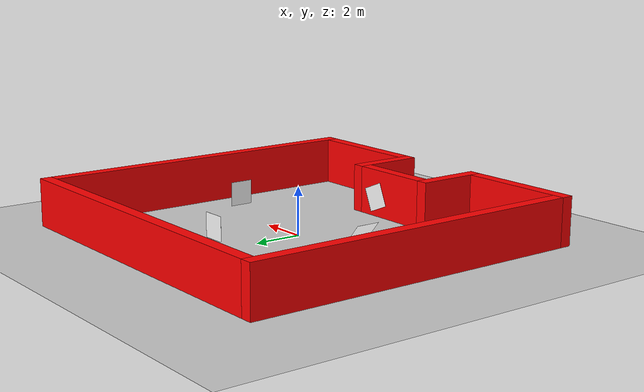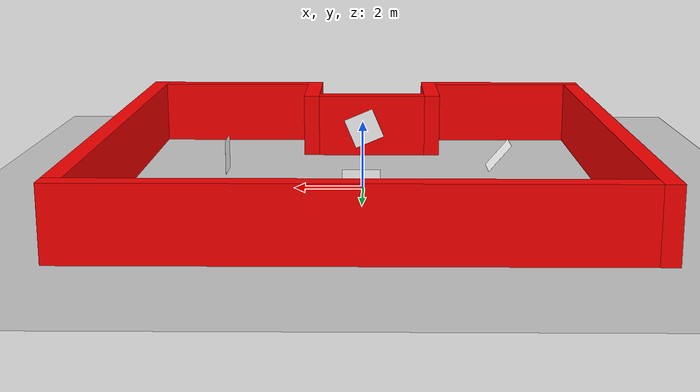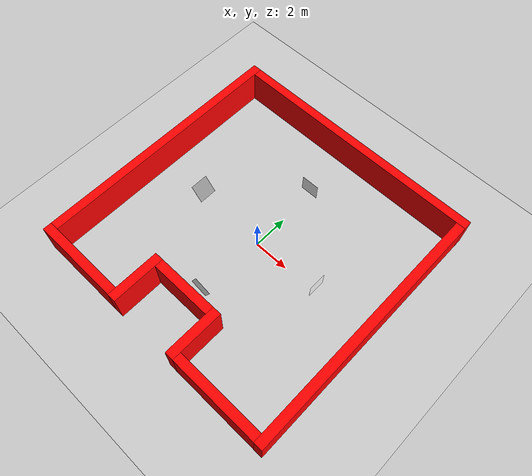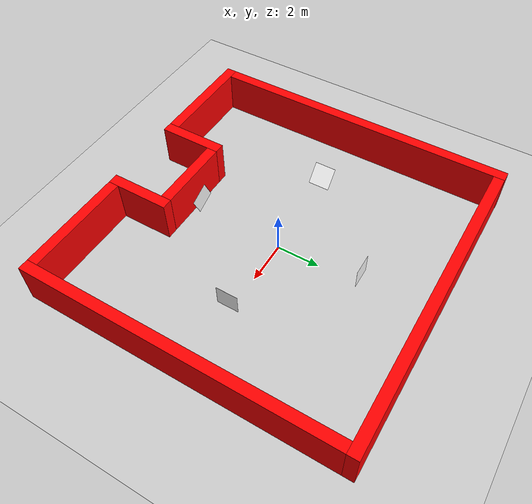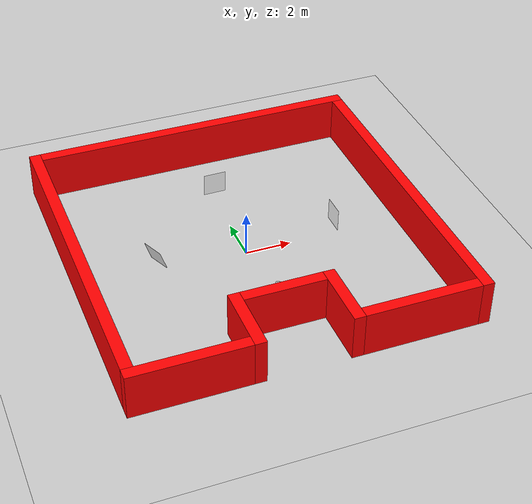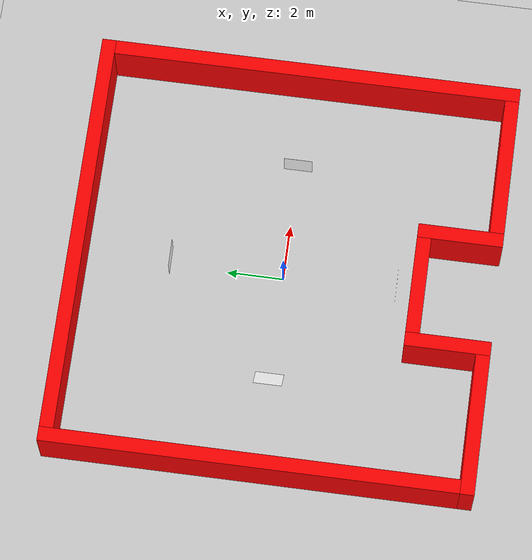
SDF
<?xml version="1.0" ?>
<sdf version='1.7'>
  <world name='my_world'>
    <physics name="1ms" type="ignored">
      <max_step_size>0.001</max_step_size>
      <real_time_factor>1.0</real_time_factor>
    </physics>
    <plugin
      filename="gz-sim-physics-system"
      name="gz::sim::systems::Physics">
    </plugin>
    <plugin
      filename="gz-sim-user-commands-system"
      name="gz::sim::systems::UserCommands">
    </plugin>
    <plugin
      filename="gz-sim-scene-broadcaster-system"
      name="gz::sim::systems::SceneBroadcaster">
    </plugin>
    <plugin filename="gz-sim-imu-system"
      name="gz::sim::systems::Imu">
    </plugin>
    <plugin
      filename="gz-sim-sensors-system"
      name="gz::sim::systems::Sensors">
      <render_engine>ogre2</render_engine>
      </plugin>

        <light type="directional" name="sun">
            <cast_shadows>true</cast_shadows>
            <pose>0 0 10 0 0 0</pose>
            <diffuse>0.8 0.8 0.8 1</diffuse>
            <specular>0.2 0.2 0.2 1</specular>
            <attenuation>
                <range>1000</range>
                <constant>0.9</constant>
                <linear>0.01</linear>
                <quadratic>0.001</quadratic>
            </attenuation>
            <direction>-0.5 0.1 -0.9</direction>
        </light>

        <model name="ground_plane">
            <static>true</static>
            <link name="link">
                <collision name="collision">
                <geometry>
                    <plane>
                    <normal>0 0 1</normal>
                    </plane>
                </geometry>
                </collision>
                <visual name="visual">
                <geometry>
                    <plane>
                    <normal>0 0 1</normal>
                    <size>15 15</size>
                    </plane>
                </geometry>
                <material>
                    <ambient>0.8 0.8 0.8 1</ambient>
                    <diffuse>0.8 0.8 0.8 1</diffuse>
                    <specular>0.8 0.8 0.8 1</specular>
                </material>
                </visual>
            </link>
        </model>

    <!-- walls -->

    <model name='wall_1'>
    <static>true</static>
    <pose>7.25 -0.25 1 0 0 0</pose><!--pose relative to the world-->
    <link name='box'>
        <visual name='visual'>
            <geometry>
                <box>
                    <size>0.5 14.5 2.0</size>
                </box>
            </geometry>
            <!--let's add color to our link-->
            <material>
                <ambient>1 0 0 1</ambient>
                <diffuse>1 0 0 1</diffuse>
                <specular>1 0 0 1</specular>
            </material>
        </visual>
        <collision name='collision'>
            <geometry>
                <box>
                    <size>0.5 14.5 2.0</size>
                </box>
            </geometry>
        </collision>
    </link>
</model>

<model name='wall_2'>
    <static>true</static>
    <pose>-7.25 0.25 1 0 0 0</pose><!--pose relative to the world-->
    <link name='box'>
        <visual name='visual'>
            <geometry>
                <box>
                    <size>0.5 14.5 2.0</size>
                </box>
            </geometry>
            <!--let's add color to our link-->
            <material>
                <ambient>1 0 0 1</ambient>
                <diffuse>1 0 0 1</diffuse>
                <specular>1 0 0 1</specular>
            </material>
        </visual>
        <collision name='collision'>
            <geometry>
                <box>
                    <size>0.5 14.5 2.0</size>
                </box>
            </geometry>
        </collision>
    </link>
</model>

<model name='wall_3'>
    <static>true</static>
    <pose>0.25 7.25 1 0 0 0</pose><!--pose relative to the world-->
    <link name='box'>
        <visual name='visual'>
            <geometry>
                <box>
                    <size>14.5 0.5 2.0</size>
                </box>
            </geometry>
            <!--let's add color to our link-->
            <material>
                <ambient>1 0 0 1</ambient>
                <diffuse>1 0 0 1</diffuse>
                <specular>1 0 0 1</specular>
            </material>
        </visual>
        <collision name='collision'>
            <geometry>
                <box>
                    <size>14.5 0.5 2.0</size>
                </box>
            </geometry>
        </collision>
    </link>
</model>

<model name='wall_4_a'>
    <static>true</static>
    <pose>4.5 -7.25 1 0 0 0</pose><!--pose relative to the world-->
    <link name='box'>
        <visual name='visual'>
            <geometry>
                <box>
                    <size>5 0.5 2.0</size>
                </box>
            </geometry>
            <!--let's add color to our link-->
            <material>
                <ambient>1 0 0 1</ambient>
                <diffuse>1 0 0 1</diffuse>
                <specular>1 0 0 1</specular>
            </material>
        </visual>
        <collision name='collision'>
            <geometry>
                <box>
                    <size>5 0.5 2.0</size>
                </box>
            </geometry>
        </collision>
    </link>
</model>

<model name='wall_4_b'>
    <static>true</static>
    <pose>-5 -7.25 1 0 0 0</pose><!--pose relative to the world-->
    <link name='box'>
        <visual name='visual'>
            <geometry>
                <box>
                    <size>5 0.5 2.0</size>
                </box>
            </geometry>
            <!--let's add color to our link-->
            <material>
                <ambient>1 0 0 1</ambient>
                <diffuse>1 0 0 1</diffuse>
                <specular>1 0 0 1</specular>
            </material>
        </visual>
        <collision name='collision'>
            <geometry>
                <box>
                    <size>5 0.5 2.0</size>
                </box>
            </geometry>
        </collision>
    </link>
</model>

<model name='wall_4_c'>
    <static>true</static>
    <pose>1.75 -6 1 0 0 0</pose><!--pose relative to the world-->
    <link name='box'>
        <visual name='visual'>
            <geometry>
                <box>
                    <size>0.5 3 2.0</size>
                </box>
            </geometry>
            <!--let's add color to our link-->
            <material>
                <ambient>1 0 0 1</ambient>
                <diffuse>1 0 0 1</diffuse>
                <specular>1 0 0 1</specular>
            </material>
        </visual>
        <collision name='collision'>
            <geometry>
                <box>
                    <size>0.5 3 2.0</size>
                </box>
            </geometry>
        </collision>
    </link>
</model>

<model name='wall_4_d'>
    <static>true</static>
    <pose>-2.25 -6 1 0 0 0</pose><!--pose relative to the world-->
    <link name='box'>
        <visual name='visual'>
            <geometry>
                <box>
                    <size>0.5 3 2.0</size>
                </box>
            </geometry>
            <!--let's add color to our link-->
            <material>
                <ambient>1 0 0 1</ambient>
                <diffuse>1 0 0 1</diffuse>
                <specular>1 0 0 1</specular>
            </material>
        </visual>
        <collision name='collision'>
            <geometry>
                <box>
                    <size>0.5 3 2.0</size>
                </box>
            </geometry>
        </collision>
    </link>
</model>

<model name='wall_4_e'>
    <static>true</static>
    <pose>-0.25 -4.75 1 0 0 0</pose><!--pose relative to the world-->
    <link name='box'>
        <visual name='visual'>
            <geometry>
                <box>
                    <size>3.5 0.5 2.0</size>
                </box>
            </geometry>
            <!--let's add color to our link-->
            <material>
                <ambient>1 0 0 1</ambient>
                <diffuse>1 0 0 1</diffuse>
                <specular>1 0 0 1</specular>
            </material>
        </visual>
        <collision name='collision'>
            <geometry>
                <box>
                    <size>3.5 0.5 2.0</size>
                </box>
            </geometry>
        </collision>
    </link>
</model>

<model name="aruco_marker2">
      <static>true</static>
      <link name="link">
        <visual name="marker_visual2">
          <pose>4 0 1 0 0 0</pose>
          <geometry>
            <box>
              <size>0.001 1 1</size>
            </box>
          </geometry>
          <material>

        <ambient>1 1 1 1</ambient>
      <diffuse>1 1 1 1</diffuse>
      <specular>0.1 0.1 0.1 1</specular>
      <emissive>0 0 0 1</emissive>
            <pbr>
              <metal>

                <albedo_map>aruco_marker2.jpg</albedo_map>
                <metalness>0</metalness>
                <roughness>1</roughness>
              </metal>
            </pbr>
          </material>
        </visual>

        <collision name="collision">
        <pose>4 0 1 0 0 0</pose>
        <geometry>
          <box>
            <size>0.001 1 1</size>
          </box>
        </geometry>
      </collision>
      </link>
    </model>

<model name="aruco_marker3">
      <static>true</static>
      <link name="link">
        <visual name="marker_visual3">
          <pose>0 4 1 0 0 1.58</pose>
          <geometry>
            <box>
              <size>0.001 1 1</size>
            </box>
          </geometry>
          <material>

        <ambient>1 1 1 1</ambient>
      <diffuse>1 1 1 1</diffuse>
      <specular>0.1 0.1 0.1 1</specular>
      <emissive>0 0 0 1</emissive>
            <pbr>
              <metal>

                <albedo_map>aruco_marker3.png</albedo_map>
                <metalness>0</metalness>
                <roughness>1</roughness>
              </metal>
            </pbr>
          </material>
        </visual>

        <collision name="collision">
        <pose>0 4 1 0 0 1.58</pose>
        <geometry>
          <box>
            <size>0.001 1 1</size>
          </box>
        </geometry>
      </collision>
      </link>
    </model>

<model name="aruco_marker5">
      <static>true</static>
      <link name="link">
        <visual name="marker_visual5">
          <pose>0 -4 1 0.4 0 1.58</pose>
          <geometry>
            <box>
              <size>0.001 1 1</size>
            </box>
          </geometry>
          <material>

        <ambient>1 1 1 1</ambient>
      <diffuse>1 1 1 1</diffuse>
      <specular>0.1 0.1 0.1 1</specular>
      <emissive>0 0 0 1</emissive>
            <pbr>
              <metal>

                <albedo_map>aruco_marker5.png</albedo_map>
                <metalness>0</metalness>
                <roughness>1</roughness>
              </metal>
            </pbr>
          </material>
        </visual>

        <collision name="collision">
        <pose>0 -4 1 0.4 0 1.58</pose>
        <geometry>
          <box>
            <size>0.001 1 1</size>
          </box>
        </geometry>
      </collision>
      </link>
    </model>

<model name="aruco_marker9">
      <static>true</static>
      <link name="link">
        <visual name="marker_visual9">
          <pose>-4 0 1 0 -0.7 0</pose>
          <geometry>
            <box>
              <size>0.001 1 1</size>
            </box>
          </geometry>
          <material>

        <ambient>1 1 1 1</ambient>
      <diffuse>1 1 1 1</diffuse>
      <specular>0.1 0.1 0.1 1</specular>
      <emissive>0 0 0 1</emissive>
            <pbr>
              <metal>

                <albedo_map>aruco_marker9.png</albedo_map>
                <metalness>0</metalness>
                <roughness>1</roughness>
              </metal>
            </pbr>
          </material>
        </visual>

        <collision name="collision">
        <pose>-4 0 1 0 -0.7 0</pose>
        <geometry>
          <box>
            <size>0.001 1 1</size>
          </box>
        </geometry>
      </collision>
      </link>
    </model>

    </world>
</sdf>
